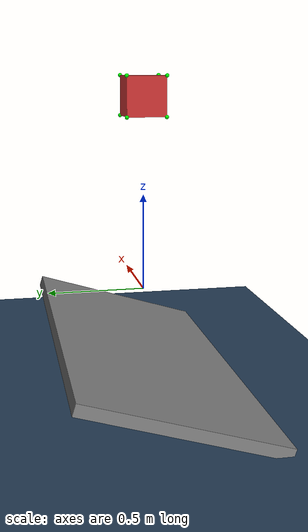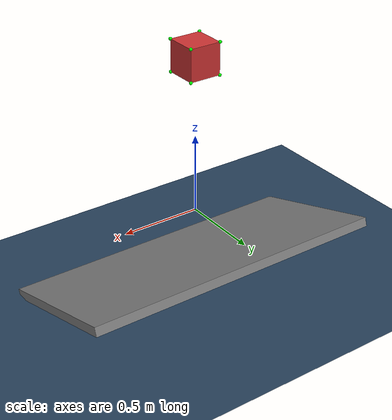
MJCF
<mujoco model="touch_sensor_incline_test">
  <compiler eulerseq="XYZ" fitaabb="true" angle="radian" autolimits="true"/>
  <option timestep="0.001" gravity="0 0 -9.81"/>

  <asset>
     <texture name="skybox" type="skybox" builtin="gradient" rgb1="0.2 0.3 0.4" rgb2="0 0 0" width="1000" height="1000" mark="random" random="0.001" markrgb="1 1 1"/>
     <texture type="2d" name="groundplane" builtin="checker" mark="edge" rgb1="0.2 0.3 0.4" rgb2="0.1 0.2 0.3" markrgb="0.8 0.8 0.8" width="1000" height="1000"/>
     <material name="groundplane" texture="groundplane" texuniform="true" texrepeat="5 5" reflectance="0.2"/>
     <material name="incline_material" rgba="0.5 0.5 0.5 1"/>
     <material name="cube_material" rgba="0.8 0.2 0.2 1"/>
     <material name="bottom_sensor" rgba="1 0 0 0.7"/>
  </asset>

  <worldbody>
   <geom name="floor" pos="0 0 -0.5" size="0 0 1" type="plane" material="groundplane"/>
   <light directional="true" diffuse=".8 .8 .8" specular=".2 .2 .2" pos="0 0 5" dir="0 0 -1"/>

    <!-- incline -->
    <body name="incline" pos="0 0 -.35">
      <geom name="incline_plane" type="box" size="1 0.5 0.03" pos="0 0 0" euler="0.3 0 0" material="incline_material"/>
    </body>

    <body name="cube" pos="0 0 1">
      <joint type="free"/>
      <geom name="cube_geom" type="box" size="0.1 0.1 0.1" material="cube_material" mass="10"/>

      <site name="bottom_corner_1" type="sphere" size="0.01" pos="0.1 0.1 -0.1" rgba="0 1 0 1"/>
      <site name="bottom_corner_2" type="sphere" size="0.01" pos="0.1 -0.1 -0.1" rgba="0 1 0 1"/>
      <site name="bottom_corner_3" type="sphere" size="0.01" pos="-0.1 0.1 -0.1" rgba="0 1 0 1"/>
      <site name="bottom_corner_4" type="sphere" size="0.01" pos="-0.1 -0.1 -0.1" rgba="0 1 0 1"/>

      <site name="top_corner_1" type="sphere" size="0.01" pos="0.1 0.1 0.1" rgba="0 1 0 1"/>
      <site name="top_corner_2" type="sphere" size="0.01" pos="0.1 -0.1 0.1" rgba="0 1 0 1"/>
      <site name="top_corner_3" type="sphere" size="0.01" pos="-0.1 0.1 0.1" rgba="0 1 0 1"/>
      <site name="top_corner_4" type="sphere" size="0.01" pos="-0.1 -0.1 0.1" rgba="0 1 0 1"/>

      <site name="front_corner_1" type="sphere" size="0.01" pos="0.1 0.1 0.1" rgba="0 1 0 1"/>
      <site name="front_corner_2" type="sphere" size="0.01" pos="0.1 0.1 -0.1" rgba="0 1 0 1"/>
      <site name="front_corner_3" type="sphere" size="0.01" pos="-0.1 0.1 0.1" rgba="0 1 0 1"/>
      <site name="front_corner_4" type="sphere" size="0.01" pos="-0.1 0.1 -0.1" rgba="0 1 0 1"/>

      <site name="back_corner_1" type="sphere" size="0.01" pos="0.1 -0.1 0.1" rgba="0 1 0 1"/>
      <site name="back_corner_2" type="sphere" size="0.01" pos="0.1 -0.1 -0.1" rgba="0 1 0 1"/>
      <site name="back_corner_3" type="sphere" size="0.01" pos="-0.1 -0.1 0.1" rgba="0 1 0 1"/>
      <site name="back_corner_4" type="sphere" size="0.01" pos="-0.1 -0.1 -0.1" rgba="0 1 0 1"/>

      <site name="right_corner_1" type="sphere" size="0.01" pos="0.1 0.1 0.1" rgba="0 1 0 1"/>
      <site name="right_corner_2" type="sphere" size="0.01" pos="0.1 -0.1 0.1" rgba="0 1 0 1"/>
      <site name="right_corner_3" type="sphere" size="0.01" pos="0.1 0.1 -0.1" rgba="0 1 0 1"/>
      <site name="right_corner_4" type="sphere" size="0.01" pos="0.1 -0.1 -0.1" rgba="0 1 0 1"/>

      <site name="left_corner_1" type="sphere" size="0.01" pos="-0.1 0.1 0.1" rgba="0 1 0 1"/>
      <site name="left_corner_2" type="sphere" size="0.01" pos="-0.1 -0.1 0.1" rgba="0 1 0 1"/>
      <site name="left_corner_3" type="sphere" size="0.01" pos="-0.1 0.1 -0.1" rgba="0 1 0 1"/>
      <site name="left_corner_4" type="sphere" size="0.01" pos="-0.1 -0.1 -0.1" rgba="0 1 0 1"/>
    </body>
  </worldbody>

  <sensor>
      <!-- bottom sensor -->
      <touch name="touch_bottom_1" site="bottom_corner_1"/>
      <touch name="touch_bottom_2" site="bottom_corner_2"/>
      <touch name="touch_bottom_3" site="bottom_corner_3"/>
      <touch name="touch_bottom_4" site="bottom_corner_4"/>

      <!-- top sensor -->
      <touch name="touch_top_1" site="top_corner_1"/>
      <touch name="touch_top_2" site="top_corner_2"/>
      <touch name="touch_top_3" site="top_corner_3"/>
      <touch name="touch_top_4" site="top_corner_4"/>

      <!-- front sensor -->
      <touch name="touch_front_1" site="front_corner_1"/>
      <touch name="touch_front_2" site="front_corner_2"/>
      <touch name="touch_front_3" site="front_corner_3"/>
      <touch name="touch_front_4" site="front_corner_4"/>

      <!-- back sensor -->
      <touch name="touch_back_1" site="back_corner_1"/>
      <touch name="touch_back_2" site="back_corner_2"/>
      <touch name="touch_back_3" site="back_corner_3"/>
      <touch name="touch_back_4" site="back_corner_4"/>

      <!-- right sensor -->
      <touch name="touch_right_1" site="right_corner_1"/>
      <touch name="touch_right_2" site="right_corner_2"/>
      <touch name="touch_right_3" site="right_corner_3"/>
      <touch name="touch_right_4" site="right_corner_4"/>

      <!-- left sensor -->
      <touch name="touch_left_1" site="left_corner_1"/>
      <touch name="touch_left_2" site="left_corner_2"/>
      <touch name="touch_left_3" site="left_corner_3"/>
      <touch name="touch_left_4" site="left_corner_4"/>
  </sensor>
</mujoco>
